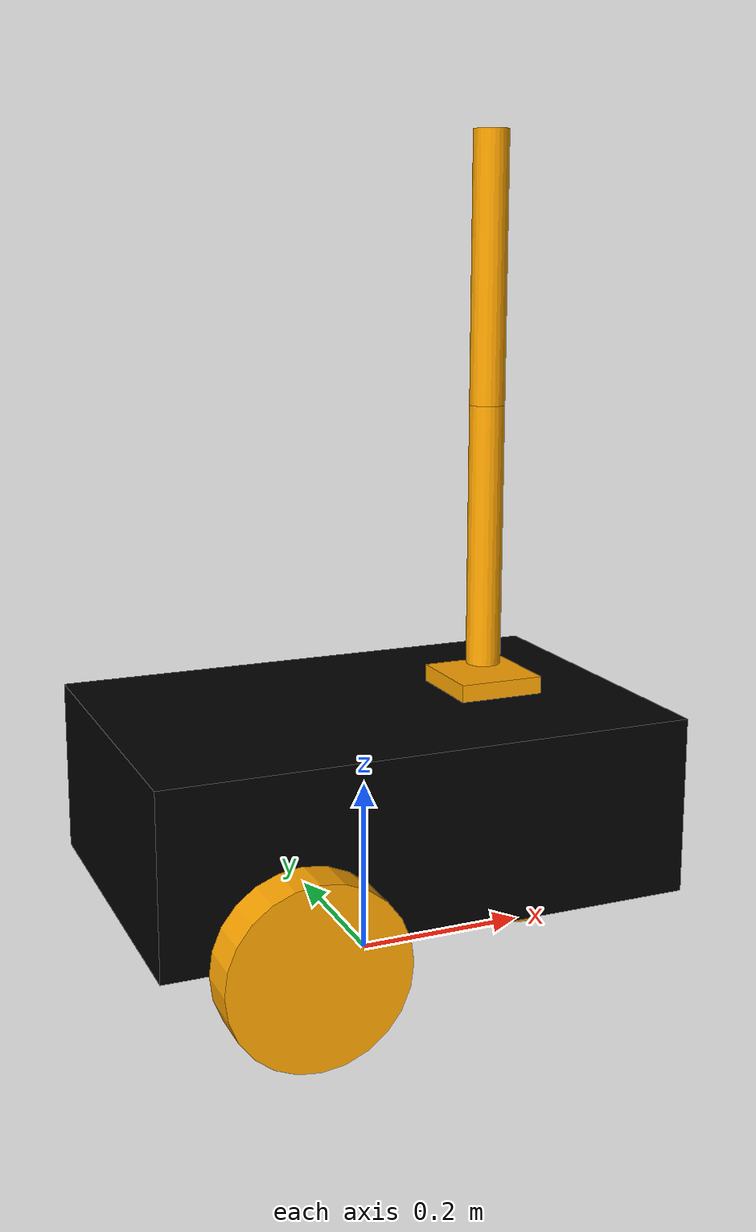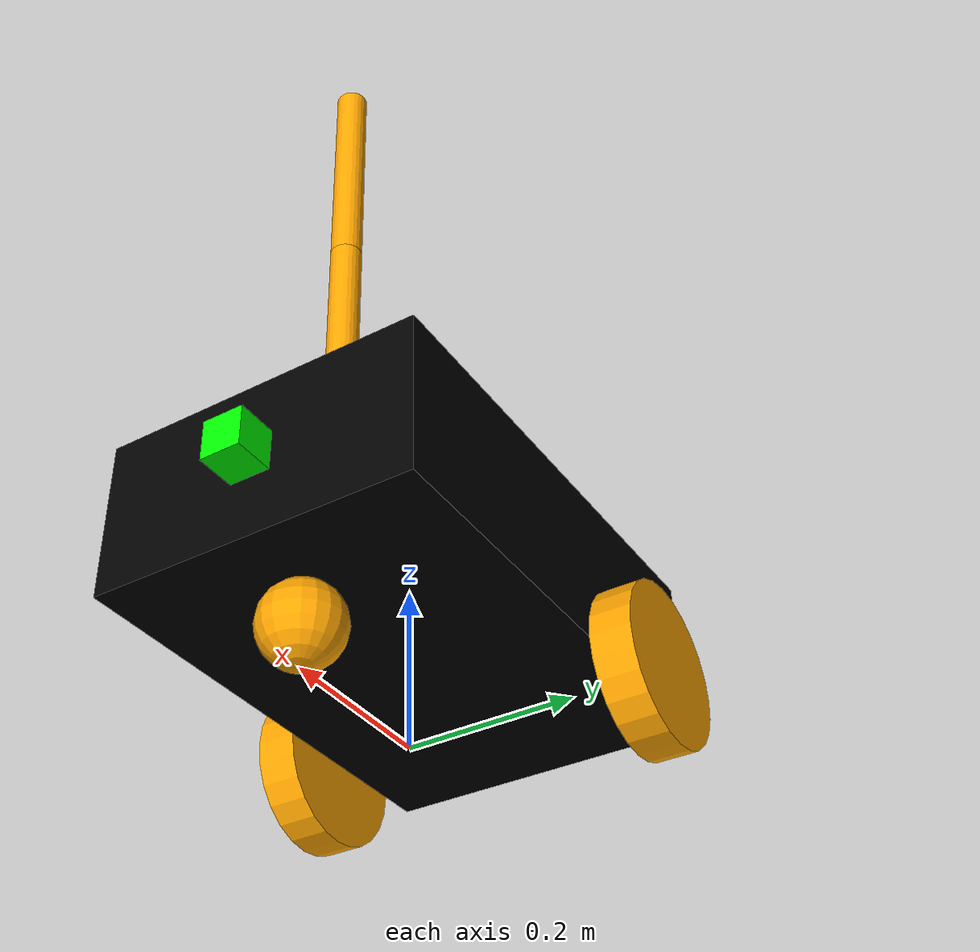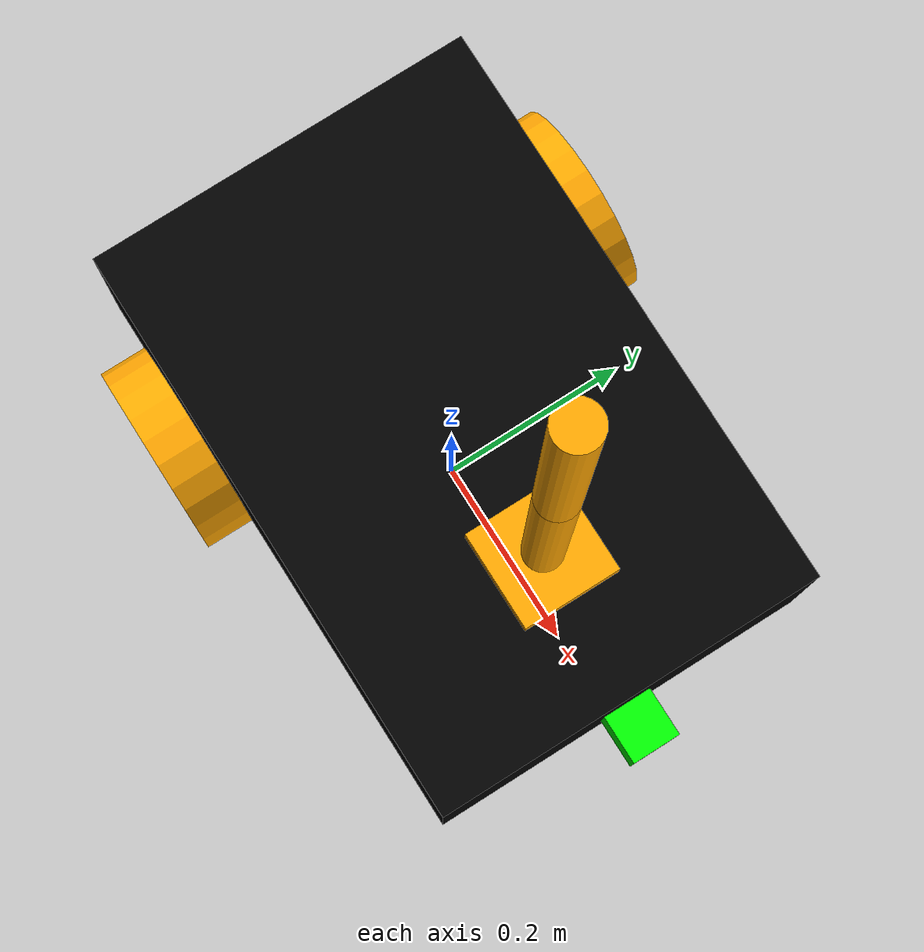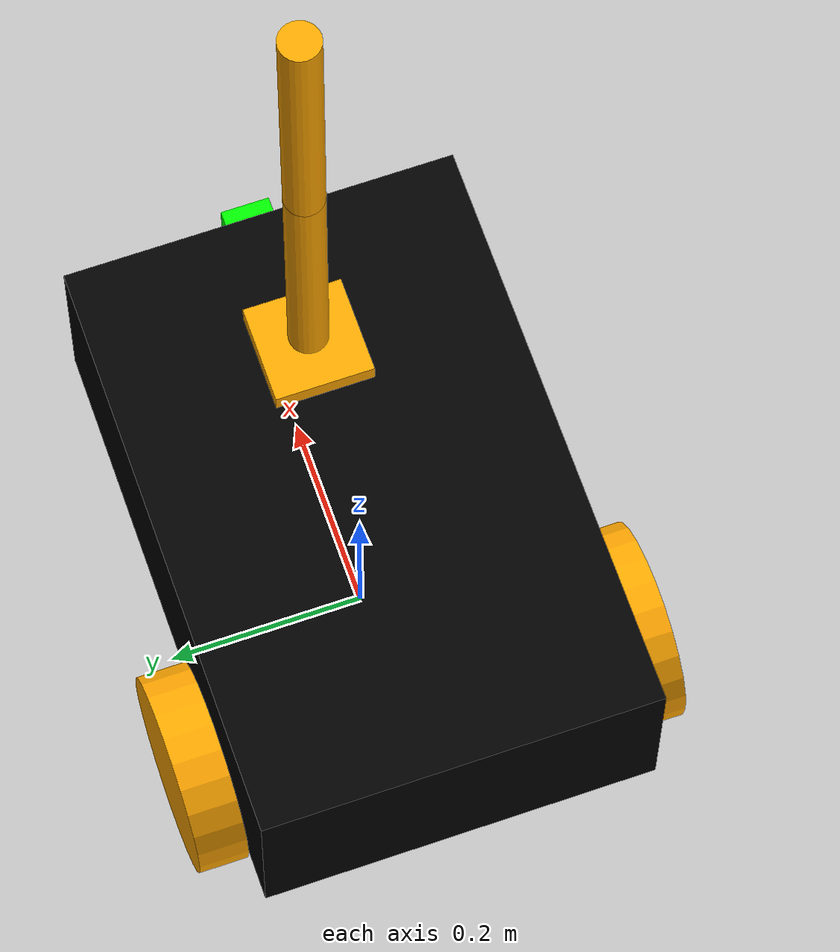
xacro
<?xml version="1.0"?>
<robot name="my_robot" xmlns:xacro="http://www.ros.org/wiki/xacro">

    <xacro:include filename="common_properties.xacro" />
    <xacro:include filename="mobile_base.xacro" />
    <xacro:include filename="mobile_base_gazebo.xacro" />
    <xacro:include filename="camera.xacro" />
    <xacro:include filename="arm.xacro" />
    <xacro:include filename="arm_gazebo.xacro" />

</robot>

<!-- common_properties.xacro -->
<robot xmlns:xacro="http://www.ros.org/wiki/xacro">

    <material name="red">
        <color rgba="1.0 0 0 1" />
    </material>

    <material name="orange">
        <color rgba="1.0 0.65 0.0 1.0" />
    </material>

    <material name="black">
        <color rgba="0 0 0 1.0" />
    </material>

    <material name="green">
        <color rgba="0 1 0 1" />
    </material>

    <xacro:macro name="box_inertia" params="m x y z o_xyz o_rpy">
        <inertial>
            <mass value="${m}" />
            <origin xyz="${o_xyz}" rpy="${o_rpy}" />
            <inertia ixx="${(m/12) * (y*y + z*z)}" ixy="0" ixz="0"
                     iyy="${(m/12) * (x*x + z*z)}" iyz="0"
                     izz="${(m/12) * (x*x + y*y)}" />
        </inertial>
    </xacro:macro>

    <xacro:macro name="cylinder_inertia" params="m r l o_xyz o_rpy">
        <inertial>
            <mass value="${m}" />
            <origin xyz="${o_xyz}" rpy="${o_rpy}" />
            <inertia ixx="${(m/12) * (3*r*r + l*l)}" ixy="0" ixz="0"
                     iyy="${(m/12) * (3*r*r + l*l)}" iyz="0"
                     izz="${(m/2) * (r*r)}" />
        </inertial>
    </xacro:macro>

    <xacro:macro name="sphere_inertia" params="m r o_xyz o_rpy">
        <inertial>
            <mass value="${m}" />
            <origin xyz="${o_xyz}" rpy="${o_rpy}" />
            <inertia ixx="${(2/5) * m * r * r}" ixy="0" ixz="0"
                     iyy="${(2/5) * m * r * r}" iyz="0"
                     izz="${(2/5) * m * r * r}" />
        </inertial>
    </xacro:macro>

</robot>

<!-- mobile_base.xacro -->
<robot xmlns:xacro="http://www.ros.org/wiki/xacro">

    <xacro:property name="base_length" value="0.6" />
    <xacro:property name="base_width" value="0.4" />
    <xacro:property name="base_height" value="0.2" />
    <xacro:property name="wheel_radius" value="0.1" />
    <xacro:property name="wheel_length" value="0.05" />

    <link name="base_footprint" />

    <link name="base_link">
        <visual>
            <geometry>
                <box size="${base_length} ${base_width} ${base_height}" />
            </geometry>
            <origin xyz="0 0 ${base_height / 2.0}" rpy="0 0 0" />
            <material name="black" />
        </visual>

        <collision>
            <geometry>
                <box size="${base_length} ${base_width} ${base_height}" />
            </geometry>
            <origin xyz="0 0 ${base_height / 2.0}" rpy="0 0 0" />
        </collision>

        <xacro:box_inertia m="5.0" x="${base_length}" y="${base_width}" z="${base_height}"
                           o_xyz="0 0 ${base_height / 2.0}" o_rpy="0 0 0"/>
    </link>

    <xacro:macro name="wheel_link" params="prefix">
        <link name="${prefix}_wheel_link">
            <visual>
                <geometry>
                    <cylinder radius="${wheel_radius}" length="${wheel_length}" />
                </geometry>
                <origin xyz="0 0 0" rpy="0 0 0" />
                <material name="orange" />
            </visual>
            <collision>
                <geometry>
                    <sphere radius="${wheel_radius}" />
                </geometry>
                <origin xyz="0 0 0" rpy="0 0 0" />
            </collision>
            <xacro:cylinder_inertia m="1.0" r="${wheel_radius}" l="${wheel_length}"
                           o_xyz="0 0 0" o_rpy="0 0 0"/>
        </link>
    </xacro:macro>

    <xacro:wheel_link prefix="right" />
    <xacro:wheel_link prefix="left" />

    <link name="caster_wheel_link">
        <visual>
            <geometry>
                <sphere radius="${wheel_radius / 2.0}" />
            </geometry>
            <origin xyz="0 0 0" rpy="0 0 0" />
            <material name="orange" />
        </visual>
        <collision>
            <geometry>
                <sphere radius="${wheel_radius / 2}" />
            </geometry>
            <origin xyz="0 0 0" rpy="0 0 0" />
        </collision>
            <xacro:sphere_inertia m="0.5" r="${wheel_radius / 2.0}"
                           o_xyz="0 0 0" o_rpy="0 0 0"/>
    </link>

    <joint name="base_joint" type="fixed">
        <parent link="base_footprint" />
        <child link="base_link" />
        <origin xyz="0 0 ${wheel_radius}" rpy="0 0 0"/>
    </joint>

    <joint name="base_right_wheel_joint" type="continuous">
        <parent link="base_link" />
        <child link="right_wheel_link" />
        <origin xyz="${-base_length / 4.0} ${-(base_width + wheel_length) / 2.0} 0" rpy="-1.57 0 0" />
        <axis xyz="0 0 1" />
    </joint>

    <joint name="base_left_wheel_joint" type="continuous">
        <parent link="base_link" />
        <child link="left_wheel_link" />
        <origin xyz="${-base_length / 4.0} ${(base_width + wheel_length) / 2.0} 0" rpy="-1.57 0 0" />
        <axis xyz="0 0 1" />
    </joint>

    <joint name="base_caster_wheel_joint" type="fixed">
        <parent link="base_link" />
        <child link="caster_wheel_link" />
        <origin xyz="${base_length / 3.0} 0 ${-wheel_radius / 2.0}" rpy="0 0 0" />
    </joint>

</robot>

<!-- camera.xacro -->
<robot xmlns:xacro="http://www.ros.org/wiki/xacro">

    <xacro:property name="camera_length" value="0.05" />
    <xacro:property name="camera_width" value="0.05" />
    <xacro:property name="camera_height" value="0.05" />

    <link name="camera_link">
        <visual>
            <geometry>
                <box size="${camera_length} ${camera_width} ${camera_height}" />
            </geometry>
            <origin xyz="0 0 0" rpy="0 0 0" />
            <material name="green" />
        </visual>
        <collision>
            <geometry>
                <box size="${camera_length} ${camera_width} ${camera_height}" />
            </geometry>
            <origin xyz="0 0 0" rpy="0 0 0" />
        </collision>
        <xacro:box_inertia m="0.1" x= "${camera_length}" y="${camera_width}" z="${camera_height}"
                           o_xyz="0 0 0" o_rpy="0 0 0"/>
    </link>

    <joint name="camera_joint" type="fixed">
        <parent link="base_link" />
        <child link="camera_link" />
        <origin
            xyz="${base_length/2 + camera_length/2} 0 ${base_height/2}"
            rpy="0 0 0" />
    </joint>

    <gazebo reference="camera_link">
    <sensor name="camera" type="camera">
        <camera>
        <horizontal_fov>1.3962634</horizontal_fov>
        <image>
            <width>640</width>
            <height>480</height>
            <format>R8G8B8</format>
        </image>
        <clip>
            <near>0.1</near>
            <far>15</far>
        </clip>
        <noise>
            <type>gaussian</type>
            <mean>0.0</mean>
            <stddev>0.007</stddev>
        </noise>
        <optical_frame_id>camera_link</optical_frame_id>
        <camera_info_topic>camera/camera_info</camera_info_topic>
        </camera>
        <always_on>1</always_on>
        <update_rate>20</update_rate>
        <visualize>true</visualize>
        <topic>camera/image_raw</topic>
    </sensor>
    </gazebo>

</robot>

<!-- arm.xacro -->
<robot xmlns:xacro="http://www.ros.org/wiki/xacro">

    <xacro:property name="robot_base_length" value="0.1" />
    <xacro:property name="robot_base_width" value="0.1" />
    <xacro:property name="robot_base_height" value="0.02" />

    <xacro:property name="base_length" value="0.6" />
    <xacro:property name="base_width" value="0.4" />
    <xacro:property name="base_height" value="0.2" />

    <xacro:property name="arm_radius" value="0.02" />
    <xacro:property name="arm_length" value="0.3" />

    <link name="arm_base">

        <visual>
            <geometry>
                <box size="${robot_base_length} ${robot_base_width} ${robot_base_height}" />
            </geometry>
            <origin xyz="0 0 0" rpy="0 0 0" />
            <material name="orange" />
        </visual>

        <collision>
            <geometry>
                <box size="${robot_base_length} ${robot_base_width} ${robot_base_height}" />
            </geometry>
            <origin xyz="0 0 0" rpy="0 0 0" />
        </collision>

        <xacro:box_inertia m="0.1"
                           x= "${robot_base_length}"
                           y="${robot_base_width}"
                           z="${robot_base_height}"
                           o_xyz="0 0 0"
                           o_rpy="0 0 0"/>
    </link>

    <xacro:macro name="arm" params="prefix">
        <link name="${prefix}_link">
            <visual>
                <geometry>
                    <cylinder radius="${arm_radius}" length="${arm_length}" />
                </geometry>
                <origin xyz="0 0 ${arm_length / 2.0 }" rpy="0 0 0" />
                <material name="orange" />
            </visual>
            <collision>
                <geometry>
                    <origin xyz="0 0 ${arm_length / 2.0 }" rpy="0 0 0" />
                </geometry>
                <origin xyz="0 0 0" rpy="0 0 0" />
            </collision>
            <xacro:cylinder_inertia m="1.0" r="${arm_radius}" l="${arm_length}"
                           o_xyz="0 0 ${arm_length / 2.0 }" o_rpy="0 0 0"/>
        </link>
    </xacro:macro>

    <xacro:arm prefix="forearm" />
    <xacro:arm prefix="hand" />

    <joint name="base_arm_base" type="fixed">
        <parent link="base_link" />
        <child link="arm_base" />
        <origin
            xyz="${base_length/4} 0 ${base_height + robot_base_height / 2}"
            rpy="0 0 0" />
    </joint>

    <joint name="arm_base_forearm" type="revolute">
        <parent link="arm_base" />
        <child link="forearm_link" />
        <origin
            xyz="0 0 ${robot_base_height}"
            rpy="0 0 0" />
        <axis xyz="0 1 0"/>
        <limit lower="0" upper="1.57" effort="100" velocity="100"/>
        <dynamics friction="0.3" damping="0.3" />
    </joint>

    <joint name="forearm_hand" type="revolute">
        <parent link="forearm_link" />
        <child link="hand_link" />
        <origin
            xyz="0 0 ${arm_length}"
            rpy="0 0 0" />
        <axis xyz="0 1 0"/>
        <limit lower="0" upper="1.57" effort="100" velocity="100"/>
        <dynamics friction="0.3" damping="0.3" />
    </joint>

</robot>
